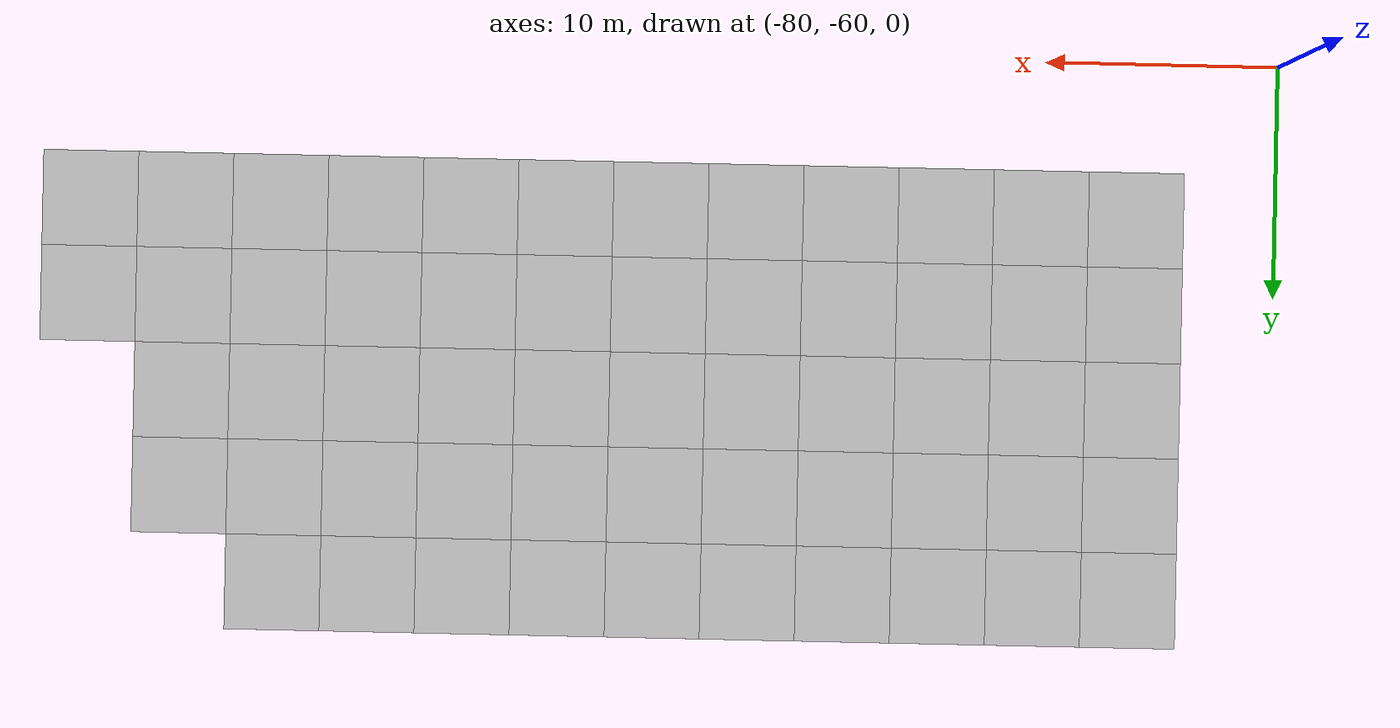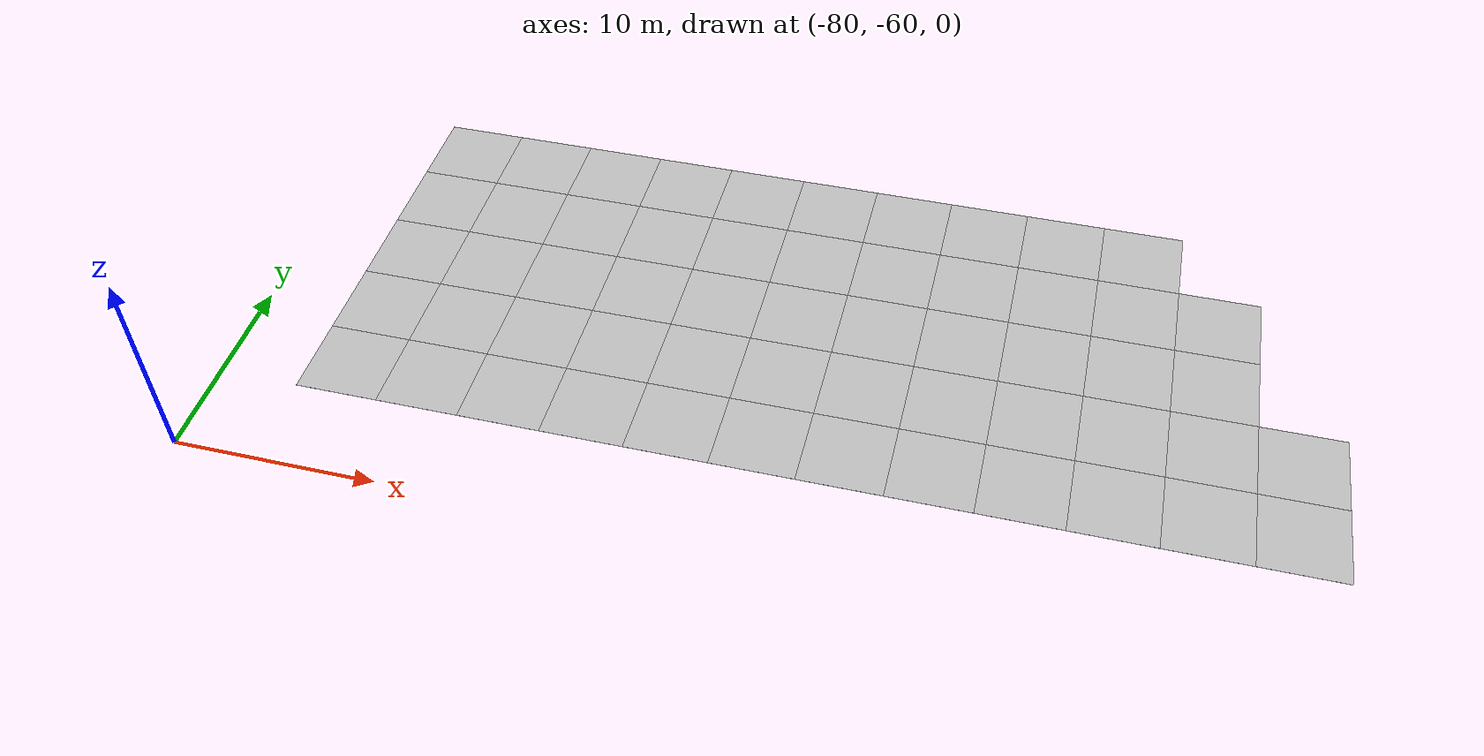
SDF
<sdf version="1.6">
 <world name="default">
  <model name="Tile/0-0">
   <static>1</static>
   <link name="link">
    <collision name="collision">
     <geometry><plane><normal>0 0 1</normal><size>4.096 4.096</size></plane></geometry>
     <surface><friction><ode><mu>100</mu><mu2>50</mu2></ode></friction></surface>
    </collision>
    <visual name="visual">
     <cast_shadows>0</cast_shadows>
     <geometry><plane><normal>0 0 1</normal><size>4.096 4.096</size></plane></geometry>
     <material>
      <script>
       <uri>file://materials/scripts</uri>
       <uri>file://materials/textures</uri>
       <name>Tile/91bbef66385bffcd6e7534826f7b9eb182a1b5c7d16e06f01ea59d02c9c09c4a</name>
      </script>
     </material>
    </visual>
   </link>
   <pose>-74.02587300576776 -53.296103275294236 0 0 -0 0</pose>
  </model>
  <model name="Tile/0-1">
   <static>1</static>
   <link name="link">
    <collision name="collision">
     <geometry><plane><normal>0 0 1</normal><size>4.096 4.096</size></plane></geometry>
     <surface><friction><ode><mu>100</mu><mu2>50</mu2></ode></friction></surface>
    </collision>
    <visual name="visual">
     <cast_shadows>0</cast_shadows>
     <geometry><plane><normal>0 0 1</normal><size>4.096 4.096</size></plane></geometry>
     <material>
      <script>
       <uri>file://materials/scripts</uri>
       <uri>file://materials/textures</uri>
       <name>Tile/f6be2463b75e14777cc4e5b2ae3858b75d1c6eee7159da1072ce02d7b1812e81</name>
      </script>
     </material>
    </visual>
   </link>
   <pose>-74.02587300576776 -49.20010327529424 0 0 -0 0</pose>
  </model>
  <model name="Tile/0-2">
   <static>1</static>
   <link name="link">
    <collision name="collision">
     <geometry><plane><normal>0 0 1</normal><size>4.096 4.096</size></plane></geometry>
     <surface><friction><ode><mu>100</mu><mu2>50</mu2></ode></friction></surface>
    </collision>
    <visual name="visual">
     <cast_shadows>0</cast_shadows>
     <geometry><plane><normal>0 0 1</normal><size>4.096 4.096</size></plane></geometry>
     <material>
      <script>
       <uri>file://materials/scripts</uri>
       <uri>file://materials/textures</uri>
       <name>Tile/42a53dfddcc55a76586b7598f74be3bd22b28463fbaf7a9b0297656511062ebe</name>
      </script>
     </material>
    </visual>
   </link>
   <pose>-74.02587300576776 -45.104103275294236 0 0 -0 0</pose>
  </model>
  <model name="Tile/0-3">
   <static>1</static>
   <link name="link">
    <collision name="collision">
     <geometry><plane><normal>0 0 1</normal><size>4.096 4.096</size></plane></geometry>
     <surface><friction><ode><mu>100</mu><mu2>50</mu2></ode></friction></surface>
    </collision>
    <visual name="visual">
     <cast_shadows>0</cast_shadows>
     <geometry><plane><normal>0 0 1</normal><size>4.096 4.096</size></plane></geometry>
     <material>
      <script>
       <uri>file://materials/scripts</uri>
       <uri>file://materials/textures</uri>
       <name>Tile/5eab350b8220ac9944dbdfa4ac3288c7c17e24c3bf5df0dfcf6173d64dae00a1</name>
      </script>
     </material>
    </visual>
   </link>
   <pose>-74.02587300576776 -41.00810327529424 0 0 -0 0</pose>
  </model>
  <model name="Tile/0-4">
   <static>1</static>
   <link name="link">
    <collision name="collision">
     <geometry><plane><normal>0 0 1</normal><size>4.096 4.096</size></plane></geometry>
     <surface><friction><ode><mu>100</mu><mu2>50</mu2></ode></friction></surface>
    </collision>
    <visual name="visual">
     <cast_shadows>0</cast_shadows>
     <geometry><plane><normal>0 0 1</normal><size>4.096 4.096</size></plane></geometry>
     <material>
      <script>
       <uri>file://materials/scripts</uri>
       <uri>file://materials/textures</uri>
       <name>Tile/5eab350b8220ac9944dbdfa4ac3288c7c17e24c3bf5df0dfcf6173d64dae00a1</name>
      </script>
     </material>
    </visual>
   </link>
   <pose>-74.02587300576776 -36.91210327529424 0 0 -0 0</pose>
  </model>
  <model name="Tile/1-0">
   <static>1</static>
   <link name="link">
    <collision name="collision">
     <geometry><plane><normal>0 0 1</normal><size>4.096 4.096</size></plane></geometry>
     <surface><friction><ode><mu>100</mu><mu2>50</mu2></ode></friction></surface>
    </collision>
    <visual name="visual">
     <cast_shadows>0</cast_shadows>
     <geometry><plane><normal>0 0 1</normal><size>4.096 4.096</size></plane></geometry>
     <material>
      <script>
       <uri>file://materials/scripts</uri>
       <uri>file://materials/textures</uri>
       <name>Tile/85cf9636c4fd25f23c5ed7e23dcb8c5db37b7b784e670a48e8e8ba01d695afd9</name>
      </script>
     </material>
    </visual>
   </link>
   <pose>-69.92987300576776 -53.296103275294236 0 0 -0 0</pose>
  </model>
  <model name="Tile/1-1">
   <static>1</static>
   <link name="link">
    <collision name="collision">
     <geometry><plane><normal>0 0 1</normal><size>4.096 4.096</size></plane></geometry>
     <surface><friction><ode><mu>100</mu><mu2>50</mu2></ode></friction></surface>
    </collision>
    <visual name="visual">
     <cast_shadows>0</cast_shadows>
     <geometry><plane><normal>0 0 1</normal><size>4.096 4.096</size></plane></geometry>
     <material>
      <script>
       <uri>file://materials/scripts</uri>
       <uri>file://materials/textures</uri>
       <name>Tile/71e0495ad46e4f884da927675b24a4ff5da9f4fa47b91c8f0d2153042dd503ff</name>
      </script>
     </material>
    </visual>
   </link>
   <pose>-69.92987300576776 -49.20010327529424 0 0 -0 0</pose>
  </model>
  <model name="Tile/1-2">
   <static>1</static>
   <link name="link">
    <collision name="collision">
     <geometry><plane><normal>0 0 1</normal><size>4.096 4.096</size></plane></geometry>
     <surface><friction><ode><mu>100</mu><mu2>50</mu2></ode></friction></surface>
    </collision>
    <visual name="visual">
     <cast_shadows>0</cast_shadows>
     <geometry><plane><normal>0 0 1</normal><size>4.096 4.096</size></plane></geometry>
     <material>
      <script>
       <uri>file://materials/scripts</uri>
       <uri>file://materials/textures</uri>
       <name>Tile/56c09ec103a6fb9ecd4fa21337668b14452033cac857a082c1e33454fd6753ad</name>
      </script>
     </material>
    </visual>
   </link>
   <pose>-69.92987300576776 -45.104103275294236 0 0 -0 0</pose>
  </model>
  <model name="Tile/1-3">
   <static>1</static>
   <link name="link">
    <collision name="collision">
     <geometry><plane><normal>0 0 1</normal><size>4.096 4.096</size></plane></geometry>
     <surface><friction><ode><mu>100</mu><mu2>50</mu2></ode></friction></surface>
    </collision>
    <visual name="visual">
     <cast_shadows>0</cast_shadows>
     <geometry><plane><normal>0 0 1</normal><size>4.096 4.096</size></plane></geometry>
     <material>
      <script>
       <uri>file://materials/scripts</uri>
       <uri>file://materials/textures</uri>
       <name>Tile/6461c7e409393d1a2b026cc641a53244d41885c568744f84259c804c7a289188</name>
      </script>
     </material>
    </visual>
   </link>
   <pose>-69.92987300576776 -41.00810327529424 0 0 -0 0</pose>
  </model>
  <model name="Tile/1-4">
   <static>1</static>
   <link name="link">
    <collision name="collision">
     <geometry><plane><normal>0 0 1</normal><size>4.096 4.096</size></plane></geometry>
     <surface><friction><ode><mu>100</mu><mu2>50</mu2></ode></friction></surface>
    </collision>
    <visual name="visual">
     <cast_shadows>0</cast_shadows>
     <geometry><plane><normal>0 0 1</normal><size>4.096 4.096</size></plane></geometry>
     <material>
      <script>
       <uri>file://materials/scripts</uri>
       <uri>file://materials/textures</uri>
       <name>Tile/865cf95648bb6588dfb93711cde1d7424459167e80cedf71e26ebd365ffd2dea</name>
      </script>
     </material>
    </visual>
   </link>
   <pose>-69.92987300576776 -36.91210327529424 0 0 -0 0</pose>
  </model>
  <model name="Tile/2-0">
   <static>1</static>
   <link name="link">
    <collision name="collision">
     <geometry><plane><normal>0 0 1</normal><size>4.096 4.096</size></plane></geometry>
     <surface><friction><ode><mu>100</mu><mu2>50</mu2></ode></friction></surface>
    </collision>
    <visual name="visual">
     <cast_shadows>0</cast_shadows>
     <geometry><plane><normal>0 0 1</normal><size>4.096 4.096</size></plane></geometry>
     <material>
      <script>
       <uri>file://materials/scripts</uri>
       <uri>file://materials/textures</uri>
       <name>Tile/5ad7c795063515974ad52603c53f06c1ca31bfb4a94cc0d64dc59daa88b06eec</name>
      </script>
     </material>
    </visual>
   </link>
   <pose>-65.83387300576777 -53.296103275294236 0 0 -0 0</pose>
  </model>
  <model name="Tile/2-1">
   <static>1</static>
   <link name="link">
    <collision name="collision">
     <geometry><plane><normal>0 0 1</normal><size>4.096 4.096</size></plane></geometry>
     <surface><friction><ode><mu>100</mu><mu2>50</mu2></ode></friction></surface>
    </collision>
    <visual name="visual">
     <cast_shadows>0</cast_shadows>
     <geometry><plane><normal>0 0 1</normal><size>4.096 4.096</size></plane></geometry>
     <material>
      <script>
       <uri>file://materials/scripts</uri>
       <uri>file://materials/textures</uri>
       <name>Tile/bf576dd2feaed85103a7bd3a7d0d08cfacbd5e82d0cfd357ab917c69db809932</name>
      </script>
     </material>
    </visual>
   </link>
   <pose>-65.83387300576777 -49.20010327529424 0 0 -0 0</pose>
  </model>
  <model name="Tile/2-2">
   <static>1</static>
   <link name="link">
    <collision name="collision">
     <geometry><plane><normal>0 0 1</normal><size>4.096 4.096</size></plane></geometry>
     <surface><friction><ode><mu>100</mu><mu2>50</mu2></ode></friction></surface>
    </collision>
    <visual name="visual">
     <cast_shadows>0</cast_shadows>
     <geometry><plane><normal>0 0 1</normal><size>4.096 4.096</size></plane></geometry>
     <material>
      <script>
       <uri>file://materials/scripts</uri>
       <uri>file://materials/textures</uri>
       <name>Tile/5eab350b8220ac9944dbdfa4ac3288c7c17e24c3bf5df0dfcf6173d64dae00a1</name>
      </script>
     </material>
    </visual>
   </link>
   <pose>-65.83387300576777 -45.104103275294236 0 0 -0 0</pose>
  </model>
  <model name="Tile/2-3">
   <static>1</static>
   <link name="link">
    <collision name="collision">
     <geometry><plane><normal>0 0 1</normal><size>4.096 4.096</size></plane></geometry>
     <surface><friction><ode><mu>100</mu><mu2>50</mu2></ode></friction></surface>
    </collision>
    <visual name="visual">
     <cast_shadows>0</cast_shadows>
     <geometry><plane><normal>0 0 1</normal><size>4.096 4.096</size></plane></geometry>
     <material>
      <script>
       <uri>file://materials/scripts</uri>
       <uri>file://materials/textures</uri>
       <name>Tile/5eab350b8220ac9944dbdfa4ac3288c7c17e24c3bf5df0dfcf6173d64dae00a1</name>
      </script>
     </material>
    </visual>
   </link>
   <pose>-65.83387300576777 -41.00810327529424 0 0 -0 0</pose>
  </model>
  <model name="Tile/2-4">
   <static>1</static>
   <link name="link">
    <collision name="collision">
     <geometry><plane><normal>0 0 1</normal><size>4.096 4.096</size></plane></geometry>
     <surface><friction><ode><mu>100</mu><mu2>50</mu2></ode></friction></surface>
    </collision>
    <visual name="visual">
     <cast_shadows>0</cast_shadows>
     <geometry><plane><normal>0 0 1</normal><size>4.096 4.096</size></plane></geometry>
     <material>
      <script>
       <uri>file://materials/scripts</uri>
       <uri>file://materials/textures</uri>
       <name>Tile/d281935b0ae849b47b935804b83b69b631d8f1f02e111909190aa42ee35be3af</name>
      </script>
     </material>
    </visual>
   </link>
   <pose>-65.83387300576777 -36.91210327529424 0 0 -0 0</pose>
  </model>
  <model name="Tile/3-0">
   <static>1</static>
   <link name="link">
    <collision name="collision">
     <geometry><plane><normal>0 0 1</normal><size>4.096 4.096</size></plane></geometry>
     <surface><friction><ode><mu>100</mu><mu2>50</mu2></ode></friction></surface>
    </collision>
    <visual name="visual">
     <cast_shadows>0</cast_shadows>
     <geometry><plane><normal>0 0 1</normal><size>4.096 4.096</size></plane></geometry>
     <material>
      <script>
       <uri>file://materials/scripts</uri>
       <uri>file://materials/textures</uri>
       <name>Tile/757ae10223dfe3337fcc6dff5f885bac84c03d2674b995b4953eae11e924ae84</name>
      </script>
     </material>
    </visual>
   </link>
   <pose>-61.73787300576777 -53.296103275294236 0 0 -0 0</pose>
  </model>
  <model name="Tile/3-1">
   <static>1</static>
   <link name="link">
    <collision name="collision">
     <geometry><plane><normal>0 0 1</normal><size>4.096 4.096</size></plane></geometry>
     <surface><friction><ode><mu>100</mu><mu2>50</mu2></ode></friction></surface>
    </collision>
    <visual name="visual">
     <cast_shadows>0</cast_shadows>
     <geometry><plane><normal>0 0 1</normal><size>4.096 4.096</size></plane></geometry>
     <material>
      <script>
       <uri>file://materials/scripts</uri>
       <uri>file://materials/textures</uri>
       <name>Tile/b74bf2d34422e6adc22ef54a7d9cbb8ba851e2c86db14dbf9321a40adfb7bd5a</name>
      </script>
     </material>
    </visual>
   </link>
   <pose>-61.73787300576777 -49.20010327529424 0 0 -0 0</pose>
  </model>
  <model name="Tile/3-2">
   <static>1</static>
   <link name="link">
    <collision name="collision">
     <geometry><plane><normal>0 0 1</normal><size>4.096 4.096</size></plane></geometry>
     <surface><friction><ode><mu>100</mu><mu2>50</mu2></ode></friction></surface>
    </collision>
    <visual name="visual">
     <cast_shadows>0</cast_shadows>
     <geometry><plane><normal>0 0 1</normal><size>4.096 4.096</size></plane></geometry>
     <material>
      <script>
       <uri>file://materials/scripts</uri>
       <uri>file://materials/textures</uri>
       <name>Tile/5eab350b8220ac9944dbdfa4ac3288c7c17e24c3bf5df0dfcf6173d64dae00a1</name>
      </script>
     </material>
    </visual>
   </link>
   <pose>-61.73787300576777 -45.104103275294236 0 0 -0 0</pose>
  </model>
  <model name="Tile/3-3">
   <static>1</static>
   <link name="link">
    <collision name="collision">
     <geometry><plane><normal>0 0 1</normal><size>4.096 4.096</size></plane></geometry>
     <surface><friction><ode><mu>100</mu><mu2>50</mu2></ode></friction></surface>
    </collision>
    <visual name="visual">
     <cast_shadows>0</cast_shadows>
     <geometry><plane><normal>0 0 1</normal><size>4.096 4.096</size></plane></geometry>
     <material>
      <script>
       <uri>file://materials/scripts</uri>
       <uri>file://materials/textures</uri>
       <name>Tile/5eab350b8220ac9944dbdfa4ac3288c7c17e24c3bf5df0dfcf6173d64dae00a1</name>
      </script>
     </material>
    </visual>
   </link>
   <pose>-61.73787300576777 -41.00810327529424 0 0 -0 0</pose>
  </model>
  <model name="Tile/3-4">
   <static>1</static>
   <link name="link">
    <collision name="collision">
     <geometry><plane><normal>0 0 1</normal><size>4.096 4.096</size></plane></geometry>
     <surface><friction><ode><mu>100</mu><mu2>50</mu2></ode></friction></surface>
    </collision>
    <visual name="visual">
     <cast_shadows>0</cast_shadows>
     <geometry><plane><normal>0 0 1</normal><size>4.096 4.096</size></plane></geometry>
     <material>
      <script>
       <uri>file://materials/scripts</uri>
       <uri>file://materials/textures</uri>
       <name>Tile/5eab350b8220ac9944dbdfa4ac3288c7c17e24c3bf5df0dfcf6173d64dae00a1</name>
      </script>
     </material>
    </visual>
   </link>
   <pose>-61.73787300576777 -36.91210327529424 0 0 -0 0</pose>
  </model>
  <model name="Tile/4-0">
   <static>1</static>
   <link name="link">
    <collision name="collision">
     <geometry><plane><normal>0 0 1</normal><size>4.096 4.096</size></plane></geometry>
     <surface><friction><ode><mu>100</mu><mu2>50</mu2></ode></friction></surface>
    </collision>
    <visual name="visual">
     <cast_shadows>0</cast_shadows>
     <geometry><plane><normal>0 0 1</normal><size>4.096 4.096</size></plane></geometry>
     <material>
      <script>
       <uri>file://materials/scripts</uri>
       <uri>file://materials/textures</uri>
       <name>Tile/85551901eba2605e2fe465035f2251fdaf66d61c7eac0d42baf97e4579d9cbb8</name>
      </script>
     </material>
    </visual>
   </link>
   <pose>-57.64187300576776 -53.296103275294236 0 0 -0 0</pose>
  </model>
  <model name="Tile/4-1">
   <static>1</static>
   <link name="link">
    <collision name="collision">
     <geometry><plane><normal>0 0 1</normal><size>4.096 4.096</size></plane></geometry>
     <surface><friction><ode><mu>100</mu><mu2>50</mu2></ode></friction></surface>
    </collision>
    <visual name="visual">
     <cast_shadows>0</cast_shadows>
     <geometry><plane><normal>0 0 1</normal><size>4.096 4.096</size></plane></geometry>
     <material>
      <script>
       <uri>file://materials/scripts</uri>
       <uri>file://materials/textures</uri>
       <name>Tile/2ed3c2b10324696cdbe96b008a9d761ffc03cbaf37c4400dd274a97a0e2efe61</name>
      </script>
     </material>
    </visual>
   </link>
   <pose>-57.64187300576776 -49.20010327529424 0 0 -0 0</pose>
  </model>
  <model name="Tile/4-2">
   <static>1</static>
   <link name="link">
    <collision name="collision">
     <geometry><plane><normal>0 0 1</normal><size>4.096 4.096</size></plane></geometry>
     <surface><friction><ode><mu>100</mu><mu2>50</mu2></ode></friction></surface>
    </collision>
    <visual name="visual">
     <cast_shadows>0</cast_shadows>
     <geometry><plane><normal>0 0 1</normal><size>4.096 4.096</size></plane></geometry>
     <material>
      <script>
       <uri>file://materials/scripts</uri>
       <uri>file://materials/textures</uri>
       <name>Tile/5eab350b8220ac9944dbdfa4ac3288c7c17e24c3bf5df0dfcf6173d64dae00a1</name>
      </script>
     </material>
    </visual>
   </link>
   <pose>-57.64187300576776 -45.104103275294236 0 0 -0 0</pose>
  </model>
  <model name="Tile/4-3">
   <static>1</static>
   <link name="link">
    <collision name="collision">
     <geometry><plane><normal>0 0 1</normal><size>4.096 4.096</size></plane></geometry>
     <surface><friction><ode><mu>100</mu><mu2>50</mu2></ode></friction></surface>
    </collision>
    <visual name="visual">
     <cast_shadows>0</cast_shadows>
     <geometry><plane><normal>0 0 1</normal><size>4.096 4.096</size></plane></geometry>
     <material>
      <script>
       <uri>file://materials/scripts</uri>
       <uri>file://materials/textures</uri>
       <name>Tile/5eab350b8220ac9944dbdfa4ac3288c7c17e24c3bf5df0dfcf6173d64dae00a1</name>
      </script>
     </material>
    </visual>
   </link>
   <pose>-57.64187300576776 -41.00810327529424 0 0 -0 0</pose>
  </model>
  <model name="Tile/4-4">
   <static>1</static>
   <link name="link">
    <collision name="collision">
     <geometry><plane><normal>0 0 1</normal><size>4.096 4.096</size></plane></geometry>
     <surface><friction><ode><mu>100</mu><mu2>50</mu2></ode></friction></surface>
    </collision>
    <visual name="visual">
     <cast_shadows>0</cast_shadows>
     <geometry><plane><normal>0 0 1</normal><size>4.096 4.096</size></plane></geometry>
     <material>
      <script>
       <uri>file://materials/scripts</uri>
       <uri>file://materials/textures</uri>
       <name>Tile/5eab350b8220ac9944dbdfa4ac3288c7c17e24c3bf5df0dfcf6173d64dae00a1</name>
      </script>
     </material>
    </visual>
   </link>
   <pose>-57.64187300576776 -36.91210327529424 0 0 -0 0</pose>
  </model>
  <model name="Tile/5-0">
   <static>1</static>
   <link name="link">
    <collision name="collision">
     <geometry><plane><normal>0 0 1</normal><size>4.096 4.096</size></plane></geometry>
     <surface><friction><ode><mu>100</mu><mu2>50</mu2></ode></friction></surface>
    </collision>
    <visual name="visual">
     <cast_shadows>0</cast_shadows>
     <geometry><plane><normal>0 0 1</normal><size>4.096 4.096</size></plane></geometry>
     <material>
      <script>
       <uri>file://materials/scripts</uri>
       <uri>file://materials/textures</uri>
       <name>Tile/5eab350b8220ac9944dbdfa4ac3288c7c17e24c3bf5df0dfcf6173d64dae00a1</name>
      </script>
     </material>
    </visual>
   </link>
   <pose>-53.54587300576777 -53.296103275294236 0 0 -0 0</pose>
  </model>
  <model name="Tile/5-1">
   <static>1</static>
   <link name="link">
    <collision name="collision">
     <geometry><plane><normal>0 0 1</normal><size>4.096 4.096</size></plane></geometry>
     <surface><friction><ode><mu>100</mu><mu2>50</mu2></ode></friction></surface>
    </collision>
    <visual name="visual">
     <cast_shadows>0</cast_shadows>
     <geometry><plane><normal>0 0 1</normal><size>4.096 4.096</size></plane></geometry>
     <material>
      <script>
       <uri>file://materials/scripts</uri>
       <uri>file://materials/textures</uri>
       <name>Tile/aa9c17efb0ab959dbf3b03069792684ef44952abd1834f08a4609fc60ad6861b</name>
      </script>
     </material>
    </visual>
   </link>
   <pose>-53.54587300576777 -49.20010327529424 0 0 -0 0</pose>
  </model>
  <model name="Tile/5-2">
   <static>1</static>
   <link name="link">
    <collision name="collision">
     <geometry><plane><normal>0 0 1</normal><size>4.096 4.096</size></plane></geometry>
     <surface><friction><ode><mu>100</mu><mu2>50</mu2></ode></friction></surface>
    </collision>
    <visual name="visual">
     <cast_shadows>0</cast_shadows>
     <geometry><plane><normal>0 0 1</normal><size>4.096 4.096</size></plane></geometry>
     <material>
      <script>
       <uri>file://materials/scripts</uri>
       <uri>file://materials/textures</uri>
       <name>Tile/5eab350b8220ac9944dbdfa4ac3288c7c17e24c3bf5df0dfcf6173d64dae00a1</name>
      </script>
     </material>
    </visual>
   </link>
   <pose>-53.54587300576777 -45.104103275294236 0 0 -0 0</pose>
  </model>
  <model name="Tile/5-3">
   <static>1</static>
   <link name="link">
    <collision name="collision">
     <geometry><plane><normal>0 0 1</normal><size>4.096 4.096</size></plane></geometry>
     <surface><friction><ode><mu>100</mu><mu2>50</mu2></ode></friction></surface>
    </collision>
    <visual name="visual">
     <cast_shadows>0</cast_shadows>
     <geometry><plane><normal>0 0 1</normal><size>4.096 4.096</size></plane></geometry>
     <material>
      <script>
       <uri>file://materials/scripts</uri>
       <uri>file://materials/textures</uri>
       <name>Tile/5eab350b8220ac9944dbdfa4ac3288c7c17e24c3bf5df0dfcf6173d64dae00a1</name>
      </script>
     </material>
    </visual>
   </link>
   <pose>-53.54587300576777 -41.00810327529424 0 0 -0 0</pose>
  </model>
  <model name="Tile/5-4">
   <static>1</static>
   <link name="link">
    <collision name="collision">
     <geometry><plane><normal>0 0 1</normal><size>4.096 4.096</size></plane></geometry>
     <surface><friction><ode><mu>100</mu><mu2>50</mu2></ode></friction></surface>
    </collision>
    <visual name="visual">
     <cast_shadows>0</cast_shadows>
     <geometry><plane><normal>0 0 1</normal><size>4.096 4.096</size></plane></geometry>
     <material>
      <script>
       <uri>file://materials/scripts</uri>
       <uri>file://materials/textures</uri>
       <name>Tile/5eab350b8220ac9944dbdfa4ac3288c7c17e24c3bf5df0dfcf6173d64dae00a1</name>
      </script>
     </material>
    </visual>
   </link>
   <pose>-53.54587300576777 -36.91210327529424 0 0 -0 0</pose>
  </model>
  <model name="Tile/6-0">
   <static>1</static>
   <link name="link">
    <collision name="collision">
     <geometry><plane><normal>0 0 1</normal><size>4.096 4.096</size></plane></geometry>
     <surface><friction><ode><mu>100</mu><mu2>50</mu2></ode></friction></surface>
    </collision>
    <visual name="visual">
     <cast_shadows>0</cast_shadows>
     <geometry><plane><normal>0 0 1</normal><size>4.096 4.096</size></plane></geometry>
     <material>
      <script>
       <uri>file://materials/scripts</uri>
       <uri>file://materials/textures</uri>
       <name>Tile/5eab350b8220ac9944dbdfa4ac3288c7c17e24c3bf5df0dfcf6173d64dae00a1</name>
      </script>
     </material>
    </visual>
   </link>
   <pose>-49.44987300576777 -53.296103275294236 0 0 -0 0</pose>
  </model>
  <model name="Tile/6-1">
   <static>1</static>
   <link name="link">
    <collision name="collision">
     <geometry><plane><normal>0 0 1</normal><size>4.096 4.096</size></plane></geometry>
     <surface><friction><ode><mu>100</mu><mu2>50</mu2></ode></friction></surface>
    </collision>
    <visual name="visual">
     <cast_shadows>0</cast_shadows>
     <geometry><plane><normal>0 0 1</normal><size>4.096 4.096</size></plane></geometry>
     <material>
      <script>
       <uri>file://materials/scripts</uri>
       <uri>file://materials/textures</uri>
       <name>Tile/1a6252f19a352df708c98da2afb57927cc0bdff8d97934282509d3725a460b2c</name>
      </script>
     </material>
    </visual>
   </link>
   <pose>-49.44987300576777 -49.20010327529424 0 0 -0 0</pose>
  </model>
  <model name="Tile/6-2">
   <static>1</static>
   <link name="link">
    <collision name="collision">
     <geometry><plane><normal>0 0 1</normal><size>4.096 4.096</size></plane></geometry>
     <surface><friction><ode><mu>100</mu><mu2>50</mu2></ode></friction></surface>
    </collision>
    <visual name="visual">
     <cast_shadows>0</cast_shadows>
     <geometry><plane><normal>0 0 1</normal><size>4.096 4.096</size></plane></geometry>
     <material>
      <script>
       <uri>file://materials/scripts</uri>
       <uri>file://materials/textures</uri>
       <name>Tile/5eab350b8220ac9944dbdfa4ac3288c7c17e24c3bf5df0dfcf6173d64dae00a1</name>
      </script>
     </material>
    </visual>
   </link>
   <pose>-49.44987300576777 -45.104103275294236 0 0 -0 0</pose>
  </model>
  <model name="Tile/6-3">
   <static>1</static>
   <link name="link">
    <collision name="collision">
     <geometry><plane><normal>0 0 1</normal><size>4.096 4.096</size></plane></geometry>
     <surface><friction><ode><mu>100</mu><mu2>50</mu2></ode></friction></surface>
    </collision>
    <visual name="visual">
     <cast_shadows>0</cast_shadows>
     <geometry><plane><normal>0 0 1</normal><size>4.096 4.096</size></plane></geometry>
     <material>
      <script>
       <uri>file://materials/scripts</uri>
       <uri>file://materials/textures</uri>
       <name>Tile/5eab350b8220ac9944dbdfa4ac3288c7c17e24c3bf5df0dfcf6173d64dae00a1</name>
      </script>
     </material>
    </visual>
   </link>
   <pose>-49.44987300576777 -41.00810327529424 0 0 -0 0</pose>
  </model>
  <model name="Tile/6-4">
   <static>1</static>
   <link name="link">
    <collision name="collision">
     <geometry><plane><normal>0 0 1</normal><size>4.096 4.096</size></plane></geometry>
     <surface><friction><ode><mu>100</mu><mu2>50</mu2></ode></friction></surface>
    </collision>
    <visual name="visual">
     <cast_shadows>0</cast_shadows>
     <geometry><plane><normal>0 0 1</normal><size>4.096 4.096</size></plane></geometry>
     <material>
      <script>
       <uri>file://materials/scripts</uri>
       <uri>file://materials/textures</uri>
       <name>Tile/5eab350b8220ac9944dbdfa4ac3288c7c17e24c3bf5df0dfcf6173d64dae00a1</name>
      </script>
     </material>
    </visual>
   </link>
   <pose>-49.44987300576777 -36.91210327529424 0 0 -0 0</pose>
  </model>
  <model name="Tile/7-0">
   <static>1</static>
   <link name="link">
    <collision name="collision">
     <geometry><plane><normal>0 0 1</normal><size>4.096 4.096</size></plane></geometry>
     <surface><friction><ode><mu>100</mu><mu2>50</mu2></ode></friction></surface>
    </collision>
    <visual name="visual">
     <cast_shadows>0</cast_shadows>
     <geometry><plane><normal>0 0 1</normal><size>4.096 4.096</size></plane></geometry>
     <material>
      <script>
       <uri>file://materials/scripts</uri>
       <uri>file://materials/textures</uri>
       <name>Tile/5eab350b8220ac9944dbdfa4ac3288c7c17e24c3bf5df0dfcf6173d64dae00a1</name>
      </script>
     </material>
    </visual>
   </link>
   <pose>-45.35387300576777 -53.296103275294236 0 0 -0 0</pose>
  </model>
  <model name="Tile/7-1">
   <static>1</static>
   <link name="link">
    <collision name="collision">
     <geometry><plane><normal>0 0 1</normal><size>4.096 4.096</size></plane></geometry>
     <surface><friction><ode><mu>100</mu><mu2>50</mu2></ode></friction></surface>
    </collision>
    <visual name="visual">
     <cast_shadows>0</cast_shadows>
     <geometry><plane><normal>0 0 1</normal><size>4.096 4.096</size></plane></geometry>
     <material>
      <script>
       <uri>file://materials/scripts</uri>
       <uri>file://materials/textures</uri>
       <name>Tile/fbb9fba498166f38858df5185846e90f87cd09d3e199f155828e81597eb502eb</name>
      </script>
     </material>
    </visual>
   </link>
   <pose>-45.35387300576777 -49.20010327529424 0 0 -0 0</pose>
  </model>
  <model name="Tile/7-2">
   <static>1</static>
   <link name="link">
    <collision name="collision">
     <geometry><plane><normal>0 0 1</normal><size>4.096 4.096</size></plane></geometry>
     <surface><friction><ode><mu>100</mu><mu2>50</mu2></ode></friction></surface>
    </collision>
    <visual name="visual">
     <cast_shadows>0</cast_shadows>
     <geometry><plane><normal>0 0 1</normal><size>4.096 4.096</size></plane></geometry>
     <material>
      <script>
       <uri>file://materials/scripts</uri>
       <uri>file://materials/textures</uri>
       <name>Tile/5eab350b8220ac9944dbdfa4ac3288c7c17e24c3bf5df0dfcf6173d64dae00a1</name>
      </script>
     </material>
    </visual>
   </link>
   <pose>-45.35387300576777 -45.104103275294236 0 0 -0 0</pose>
  </model>
  <model name="Tile/7-3">
   <static>1</static>
   <link name="link">
    <collision name="collision">
     <geometry><plane><normal>0 0 1</normal><size>4.096 4.096</size></plane></geometry>
     <surface><friction><ode><mu>100</mu><mu2>50</mu2></ode></friction></surface>
    </collision>
    <visual name="visual">
     <cast_shadows>0</cast_shadows>
     <geometry><plane><normal>0 0 1</normal><size>4.096 4.096</size></plane></geometry>
     <material>
      <script>
       <uri>file://materials/scripts</uri>
       <uri>file://materials/textures</uri>
       <name>Tile/5eab350b8220ac9944dbdfa4ac3288c7c17e24c3bf5df0dfcf6173d64dae00a1</name>
      </script>
     </material>
    </visual>
   </link>
   <pose>-45.35387300576777 -41.00810327529424 0 0 -0 0</pose>
  </model>
  <model name="Tile/7-4">
   <static>1</static>
   <link name="link">
    <collision name="collision">
     <geometry><plane><normal>0 0 1</normal><size>4.096 4.096</size></plane></geometry>
     <surface><friction><ode><mu>100</mu><mu2>50</mu2></ode></friction></surface>
    </collision>
    <visual name="visual">
     <cast_shadows>0</cast_shadows>
     <geometry><plane><normal>0 0 1</normal><size>4.096 4.096</size></plane></geometry>
     <material>
      <script>
       <uri>file://materials/scripts</uri>
       <uri>file://materials/textures</uri>
       <name>Tile/5eab350b8220ac9944dbdfa4ac3288c7c17e24c3bf5df0dfcf6173d64dae00a1</name>
      </script>
     </material>
    </visual>
   </link>
   <pose>-45.35387300576777 -36.91210327529424 0 0 -0 0</pose>
  </model>
  <model name="Tile/8-0">
   <static>1</static>
   <link name="link">
    <collision name="collision">
     <geometry><plane><normal>0 0 1</normal><size>4.096 4.096</size></plane></geometry>
     <surface><friction><ode><mu>100</mu><mu2>50</mu2></ode></friction></surface>
    </collision>
    <visual name="visual">
     <cast_shadows>0</cast_shadows>
     <geometry><plane><normal>0 0 1</normal><size>4.096 4.096</size></plane></geometry>
     <material>
      <script>
       <uri>file://materials/scripts</uri>
       <uri>file://materials/textures</uri>
       <name>Tile/5eab350b8220ac9944dbdfa4ac3288c7c17e24c3bf5df0dfcf6173d64dae00a1</name>
      </script>
     </material>
    </visual>
   </link>
   <pose>-41.25787300576776 -53.296103275294236 0 0 -0 0</pose>
  </model>
  <model name="Tile/8-1">
   <static>1</static>
   <link name="link">
    <collision name="collision">
     <geometry><plane><normal>0 0 1</normal><size>4.096 4.096</size></plane></geometry>
     <surface><friction><ode><mu>100</mu><mu2>50</mu2></ode></friction></surface>
    </collision>
    <visual name="visual">
     <cast_shadows>0</cast_shadows>
     <geometry><plane><normal>0 0 1</normal><size>4.096 4.096</size></plane></geometry>
     <material>
      <script>
       <uri>file://materials/scripts</uri>
       <uri>file://materials/textures</uri>
       <name>Tile/5d15f5e936a4ee0a3a2eb87b595f338580b9c0bb91957c15b389e4bca45cb7b5</name>
      </script>
     </material>
    </visual>
   </link>
   <pose>-41.25787300576776 -49.20010327529424 0 0 -0 0</pose>
  </model>
  <model name="Tile/8-2">
   <static>1</static>
   <link name="link">
    <collision name="collision">
     <geometry><plane><normal>0 0 1</normal><size>4.096 4.096</size></plane></geometry>
     <surface><friction><ode><mu>100</mu><mu2>50</mu2></ode></friction></surface>
    </collision>
    <visual name="visual">
     <cast_shadows>0</cast_shadows>
     <geometry><plane><normal>0 0 1</normal><size>4.096 4.096</size></plane></geometry>
     <material>
      <script>
       <uri>file://materials/scripts</uri>
       <uri>file://materials/textures</uri>
       <name>Tile/e5a33d83ad57a5151d7418fe377bc9464bca701107382e02c461391d8e6278ca</name>
      </script>
     </material>
    </visual>
   </link>
   <pose>-41.25787300576776 -45.104103275294236 0 0 -0 0</pose>
  </model>
  <model name="Tile/8-3">
   <static>1</static>
   <link name="link">
    <collision name="collision">
     <geometry><plane><normal>0 0 1</normal><size>4.096 4.096</size></plane></geometry>
     <surface><friction><ode><mu>100</mu><mu2>50</mu2></ode></friction></surface>
    </collision>
    <visual name="visual">
     <cast_shadows>0</cast_shadows>
     <geometry><plane><normal>0 0 1</normal><size>4.096 4.096</size></plane></geometry>
     <material>
      <script>
       <uri>file://materials/scripts</uri>
       <uri>file://materials/textures</uri>
       <name>Tile/5eab350b8220ac9944dbdfa4ac3288c7c17e24c3bf5df0dfcf6173d64dae00a1</name>
      </script>
     </material>
    </visual>
   </link>
   <pose>-41.25787300576776 -41.00810327529424 0 0 -0 0</pose>
  </model>
  <model name="Tile/8-4">
   <static>1</static>
   <link name="link">
    <collision name="collision">
     <geometry><plane><normal>0 0 1</normal><size>4.096 4.096</size></plane></geometry>
     <surface><friction><ode><mu>100</mu><mu2>50</mu2></ode></friction></surface>
    </collision>
    <visual name="visual">
     <cast_shadows>0</cast_shadows>
     <geometry><plane><normal>0 0 1</normal><size>4.096 4.096</size></plane></geometry>
     <material>
      <script>
       <uri>file://materials/scripts</uri>
       <uri>file://materials/textures</uri>
       <name>Tile/5eab350b8220ac9944dbdfa4ac3288c7c17e24c3bf5df0dfcf6173d64dae00a1</name>
      </script>
     </material>
    </visual>
   </link>
   <pose>-41.25787300576776 -36.91210327529424 0 0 -0 0</pose>
  </model>
  <model name="Tile/9-0">
   <static>1</static>
   <link name="link">
    <collision name="collision">
     <geometry><plane><normal>0 0 1</normal><size>4.096 4.096</size></plane></geometry>
     <surface><friction><ode><mu>100</mu><mu2>50</mu2></ode></friction></surface>
    </collision>
    <visual name="visual">
     <cast_shadows>0</cast_shadows>
     <geometry><plane><normal>0 0 1</normal><size>4.096 4.096</size></plane></geometry>
     <material>
      <script>
       <uri>file://materials/scripts</uri>
       <uri>file://materials/textures</uri>
       <name>Tile/5eab350b8220ac9944dbdfa4ac3288c7c17e24c3bf5df0dfcf6173d64dae00a1</name>
      </script>
     </material>
    </visual>
   </link>
   <pose>-37.16187300576777 -53.296103275294236 0 0 -0 0</pose>
  </model>
  <model name="Tile/9-1">
   <static>1</static>
   <link name="link">
    <collision name="collision">
     <geometry><plane><normal>0 0 1</normal><size>4.096 4.096</size></plane></geometry>
     <surface><friction><ode><mu>100</mu><mu2>50</mu2></ode></friction></surface>
    </collision>
    <visual name="visual">
     <cast_shadows>0</cast_shadows>
     <geometry><plane><normal>0 0 1</normal><size>4.096 4.096</size></plane></geometry>
     <material>
      <script>
       <uri>file://materials/scripts</uri>
       <uri>file://materials/textures</uri>
       <name>Tile/5eab350b8220ac9944dbdfa4ac3288c7c17e24c3bf5df0dfcf6173d64dae00a1</name>
      </script>
     </material>
    </visual>
   </link>
   <pose>-37.16187300576777 -49.20010327529424 0 0 -0 0</pose>
  </model>
  <model name="Tile/9-2">
   <static>1</static>
   <link name="link">
    <collision name="collision">
     <geometry><plane><normal>0 0 1</normal><size>4.096 4.096</size></plane></geometry>
     <surface><friction><ode><mu>100</mu><mu2>50</mu2></ode></friction></surface>
    </collision>
    <visual name="visual">
     <cast_shadows>0</cast_shadows>
     <geometry><plane><normal>0 0 1</normal><size>4.096 4.096</size></plane></geometry>
     <material>
      <script>
       <uri>file://materials/scripts</uri>
       <uri>file://materials/textures</uri>
       <name>Tile/6c561ffe88213df1d87723cd5f5411196f03d611c8d2b71fc77aacd8b3d2c3e1</name>
      </script>
     </material>
    </visual>
   </link>
   <pose>-37.16187300576777 -45.104103275294236 0 0 -0 0</pose>
  </model>
  <model name="Tile/9-3">
   <static>1</static>
   <link name="link">
    <collision name="collision">
     <geometry><plane><normal>0 0 1</normal><size>4.096 4.096</size></plane></geometry>
     <surface><friction><ode><mu>100</mu><mu2>50</mu2></ode></friction></surface>
    </collision>
    <visual name="visual">
     <cast_shadows>0</cast_shadows>
     <geometry><plane><normal>0 0 1</normal><size>4.096 4.096</size></plane></geometry>
     <material>
      <script>
       <uri>file://materials/scripts</uri>
       <uri>file://materials/textures</uri>
       <name>Tile/5eab350b8220ac9944dbdfa4ac3288c7c17e24c3bf5df0dfcf6173d64dae00a1</name>
      </script>
     </material>
    </visual>
   </link>
   <pose>-37.16187300576777 -41.00810327529424 0 0 -0 0</pose>
  </model>
  <model name="Tile/9-4">
   <static>1</static>
   <link name="link">
    <collision name="collision">
     <geometry><plane><normal>0 0 1</normal><size>4.096 4.096</size></plane></geometry>
     <surface><friction><ode><mu>100</mu><mu2>50</mu2></ode></friction></surface>
    </collision>
    <visual name="visual">
     <cast_shadows>0</cast_shadows>
     <geometry><plane><normal>0 0 1</normal><size>4.096 4.096</size></plane></geometry>
     <material>
      <script>
       <uri>file://materials/scripts</uri>
       <uri>file://materials/textures</uri>
       <name>Tile/5eab350b8220ac9944dbdfa4ac3288c7c17e24c3bf5df0dfcf6173d64dae00a1</name>
      </script>
     </material>
    </visual>
   </link>
   <pose>-37.16187300576777 -36.91210327529424 0 0 -0 0</pose>
  </model>
  <model name="Tile/10-0">
   <static>1</static>
   <link name="link">
    <collision name="collision">
     <geometry><plane><normal>0 0 1</normal><size>4.096 4.096</size></plane></geometry>
     <surface><friction><ode><mu>100</mu><mu2>50</mu2></ode></friction></surface>
    </collision>
    <visual name="visual">
     <cast_shadows>0</cast_shadows>
     <geometry><plane><normal>0 0 1</normal><size>4.096 4.096</size></plane></geometry>
     <material>
      <script>
       <uri>file://materials/scripts</uri>
       <uri>file://materials/textures</uri>
       <name>Tile/5eab350b8220ac9944dbdfa4ac3288c7c17e24c3bf5df0dfcf6173d64dae00a1</name>
      </script>
     </material>
    </visual>
   </link>
   <pose>-33.06587300576776 -53.296103275294236 0 0 -0 0</pose>
  </model>
  <model name="Tile/10-1">
   <static>1</static>
   <link name="link">
    <collision name="collision">
     <geometry><plane><normal>0 0 1</normal><size>4.096 4.096</size></plane></geometry>
     <surface><friction><ode><mu>100</mu><mu2>50</mu2></ode></friction></surface>
    </collision>
    <visual name="visual">
     <cast_shadows>0</cast_shadows>
     <geometry><plane><normal>0 0 1</normal><size>4.096 4.096</size></plane></geometry>
     <material>
      <script>
       <uri>file://materials/scripts</uri>
       <uri>file://materials/textures</uri>
       <name>Tile/5eab350b8220ac9944dbdfa4ac3288c7c17e24c3bf5df0dfcf6173d64dae00a1</name>
      </script>
     </material>
    </visual>
   </link>
   <pose>-33.06587300576776 -49.20010327529424 0 0 -0 0</pose>
  </model>
  <model name="Tile/10-2">
   <static>1</static>
   <link name="link">
    <collision name="collision">
     <geometry><plane><normal>0 0 1</normal><size>4.096 4.096</size></plane></geometry>
     <surface><friction><ode><mu>100</mu><mu2>50</mu2></ode></friction></surface>
    </collision>
    <visual name="visual">
     <cast_shadows>0</cast_shadows>
     <geometry><plane><normal>0 0 1</normal><size>4.096 4.096</size></plane></geometry>
     <material>
      <script>
       <uri>file://materials/scripts</uri>
       <uri>file://materials/textures</uri>
       <name>Tile/c83bfce0f2fab7ddba9462c1f434606ee692da2659f81453cd97610c357b2e60</name>
      </script>
     </material>
    </visual>
   </link>
   <pose>-33.06587300576776 -45.104103275294236 0 0 -0 0</pose>
  </model>
  <model name="Tile/10-3">
   <static>1</static>
   <link name="link">
    <collision name="collision">
     <geometry><plane><normal>0 0 1</normal><size>4.096 4.096</size></plane></geometry>
     <surface><friction><ode><mu>100</mu><mu2>50</mu2></ode></friction></surface>
    </collision>
    <visual name="visual">
     <cast_shadows>0</cast_shadows>
     <geometry><plane><normal>0 0 1</normal><size>4.096 4.096</size></plane></geometry>
     <material>
      <script>
       <uri>file://materials/scripts</uri>
       <uri>file://materials/textures</uri>
       <name>Tile/5eab350b8220ac9944dbdfa4ac3288c7c17e24c3bf5df0dfcf6173d64dae00a1</name>
      </script>
     </material>
    </visual>
   </link>
   <pose>-33.06587300576776 -41.00810327529424 0 0 -0 0</pose>
  </model>
  <model name="Tile/11-0">
   <static>1</static>
   <link name="link">
    <collision name="collision">
     <geometry><plane><normal>0 0 1</normal><size>4.096 4.096</size></plane></geometry>
     <surface><friction><ode><mu>100</mu><mu2>50</mu2></ode></friction></surface>
    </collision>
    <visual name="visual">
     <cast_shadows>0</cast_shadows>
     <geometry><plane><normal>0 0 1</normal><size>4.096 4.096</size></plane></geometry>
     <material>
      <script>
       <uri>file://materials/scripts</uri>
       <uri>file://materials/textures</uri>
       <name>Tile/5eab350b8220ac9944dbdfa4ac3288c7c17e24c3bf5df0dfcf6173d64dae00a1</name>
      </script>
     </material>
    </visual>
   </link>
   <pose>-28.969873005767766 -53.296103275294236 0 0 -0 0</pose>
  </model>
  <model name="Tile/11-1">
   <static>1</static>
   <link name="link">
    <collision name="collision">
     <geometry><plane><normal>0 0 1</normal><size>4.096 4.096</size></plane></geometry>
     <surface><friction><ode><mu>100</mu><mu2>50</mu2></ode></friction></surface>
    </collision>
    <visual name="visual">
     <cast_shadows>0</cast_shadows>
     <geometry><plane><normal>0 0 1</normal><size>4.096 4.096</size></plane></geometry>
     <material>
      <script>
       <uri>file://materials/scripts</uri>
       <uri>file://materials/textures</uri>
       <name>Tile/5eab350b8220ac9944dbdfa4ac3288c7c17e24c3bf5df0dfcf6173d64dae00a1</name>
      </script>
     </material>
    </visual>
   </link>
   <pose>-28.969873005767766 -49.20010327529424 0 0 -0 0</pose>
  </model>
 </world>
</sdf>
